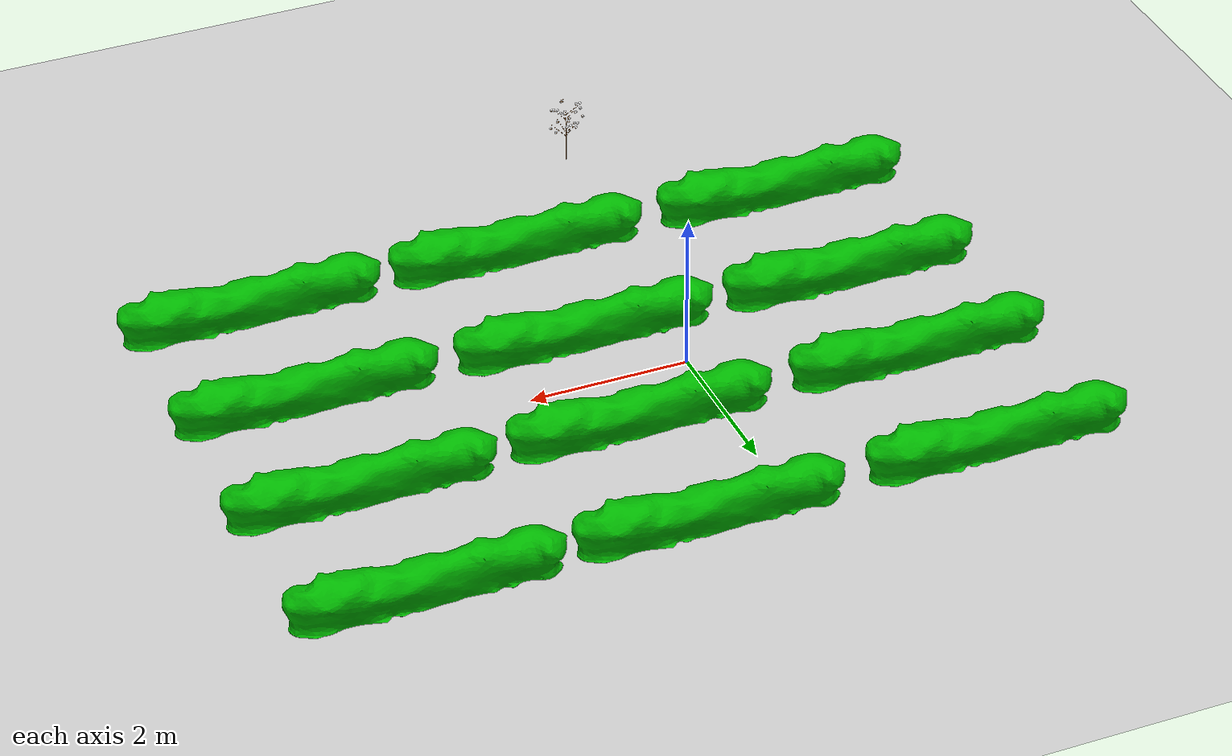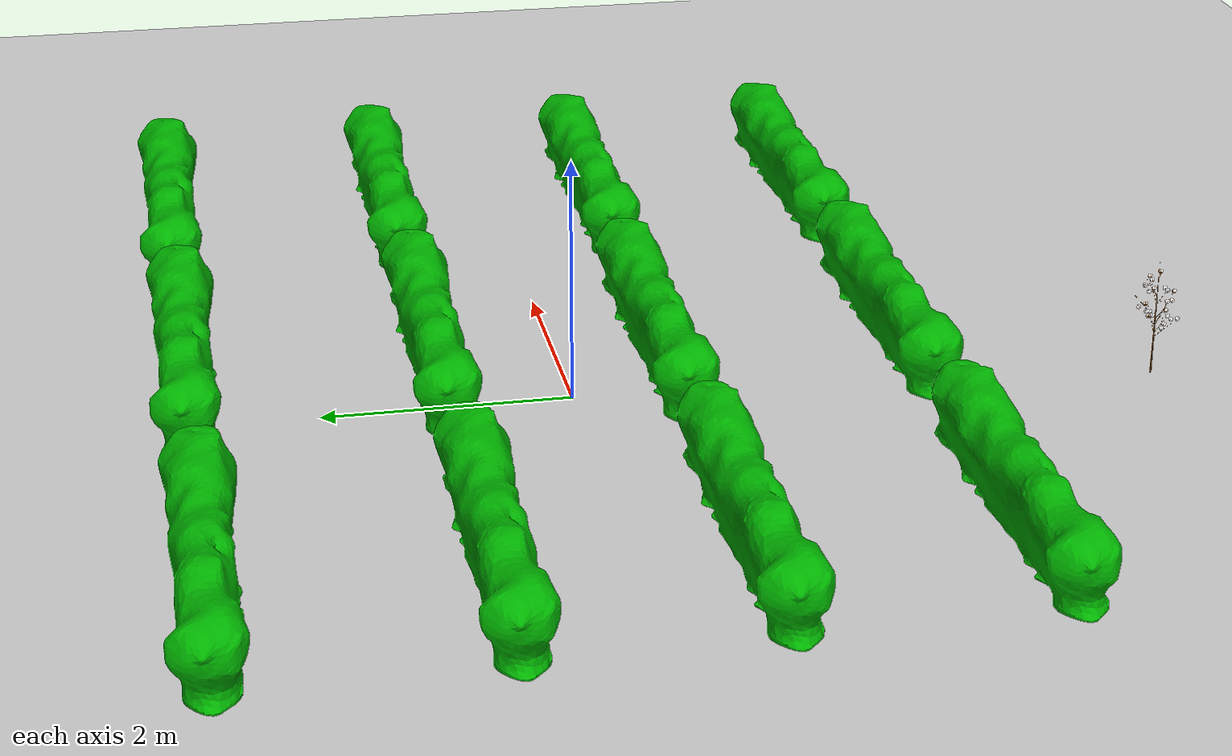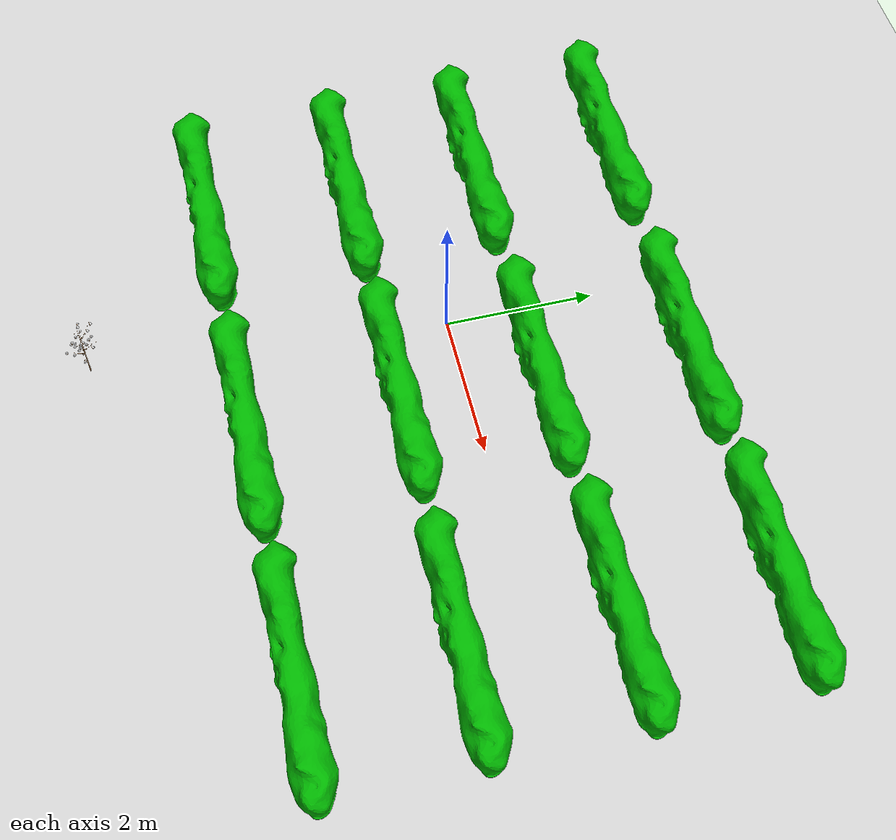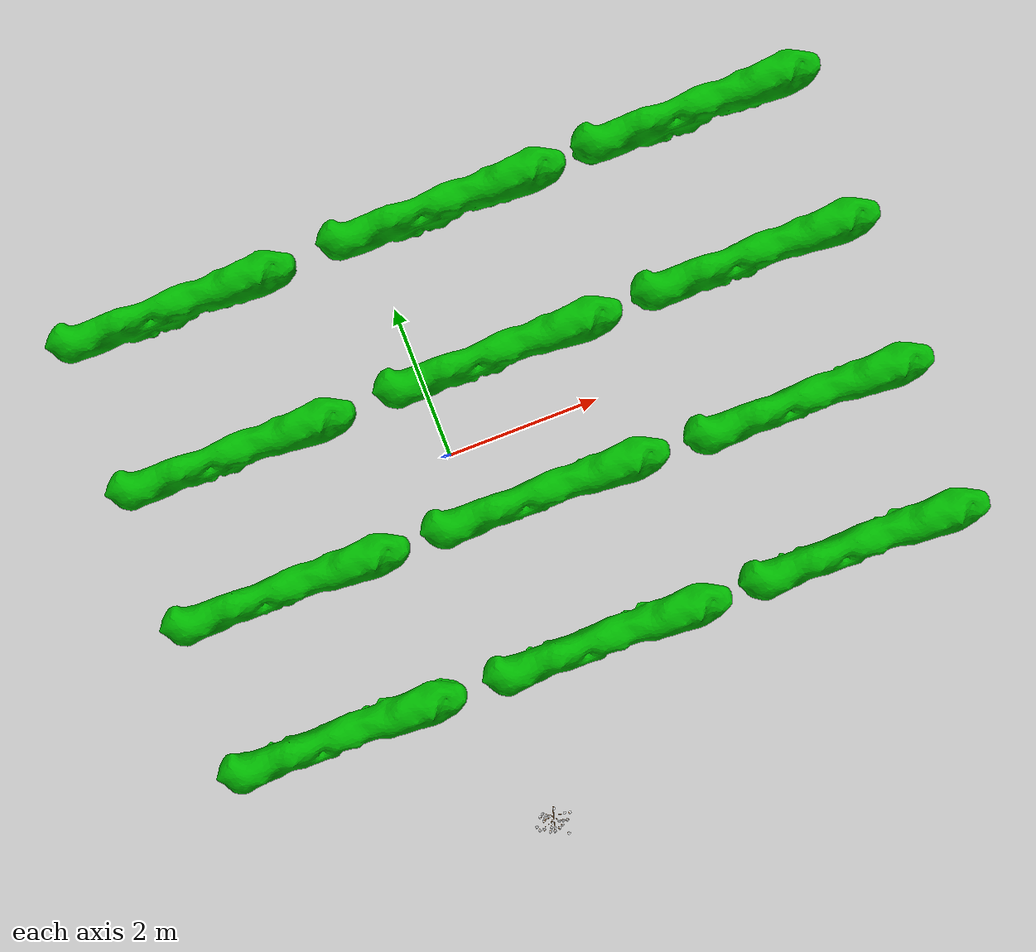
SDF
<sdf version="1.4">
 <world name="default">
  <light name="sun" type="directional">
   <pose>0 0 10 0 -0 0</pose>
   <diffuse>0.8 0.8 0.8 1</diffuse>
   <specular>0.2 0.2 0.2 1</specular>
   <attenuation>
    <range>1000</range>
    <constant>0.9</constant>
    <linear>0.01</linear>
    <quadratic>0.001</quadratic>
   </attenuation>
   <direction>-0.5 0.1 -0.9</direction>
  </light>
  <model name="earth_plane">
   <static>1</static>
   <link name="link">
    <collision name="collision">
     <geometry><plane><normal>0 0 1</normal><size>100 100</size></plane></geometry>
     <surface><friction><ode><mu>100</mu><mu2>50</mu2></ode></friction></surface>
    </collision>
    <visual name="visual">
     <cast_shadows>0</cast_shadows>
     <geometry><plane><normal>0 0 1</normal><size>100 100</size></plane></geometry>
     <material>
      <script>
       <uri>model://earth_plane/materials/scripts</uri>
       <uri>model://earth_plane/materials/textures</uri>
       <name>vrc/earth</name>
      </script>
     </material>
    </visual>
    <velocity_decay><linear>0</linear><angular>0</angular></velocity_decay>
   </link>
  </model>
  <model name="cotton">
   <link name="link">
    <collision name="collision">
     <geometry><mesh><scale>.4 .4 .4</scale><uri>model://cotton/meshes/cotton.dae</uri></mesh></geometry>
    </collision>
    <inertial>
     <mass>1</mass>
     <inertia>
      <ixx>0.166667</ixx>
      <ixy>0</ixy>
      <ixz>0</ixz>
      <iyy>0.166667</iyy>
      <iyz>0</iyz>
      <izz>0.166667</izz>
     </inertia>
    </inertial>
    <visual name="visual">
     <geometry><mesh><scale>.4 .4  .4</scale><uri>model://cotton/meshes/cotton.dae</uri></mesh></geometry>
    </visual>
    <velocity_decay><linear>0</linear><angular>0</angular></velocity_decay>
    <gravity>0</gravity>
   </link>
   <pose>1 -5 0 0 -0 0</pose>
   <static>1</static>
  </model>
  <physics type="ode">
   <max_step_size>0.001</max_step_size>
   <real_time_factor>1</real_time_factor>
   <real_time_update_rate>1000</real_time_update_rate>
   <gravity>0 0 -9.8</gravity>
  </physics>
  <scene>
   <ambient>0.4 0.4 0.4 1</ambient>
   <background>0.7 0.7 0.7 1</background>
   <shadows>1</shadows>
   <sky><clouds><speed>12</speed></clouds></sky>
  </scene>
  <spherical_coordinates>
   <surface_model>EARTH_WGS84</surface_model>
   <latitude_deg>0</latitude_deg>
   <longitude_deg>0</longitude_deg>
   <elevation>0</elevation>
   <heading_deg>0</heading_deg>
  </spherical_coordinates>
  <model name="Bush">
   <link name="link">
    <collision name="collision">
     <geometry><mesh><scale>1 1 1</scale><uri>model://plot/meshes/plot.stl</uri></mesh></geometry>
    </collision>
    <inertial>
     <mass>1</mass>
     <inertia>
      <ixx>0.166667</ixx>
      <ixy>0</ixy>
      <ixz>0</ixz>
      <iyy>0.166667</iyy>
      <iyz>0</iyz>
      <izz>0.166667</izz>
     </inertia>
    </inertial>
    <visual name="visual">
     <geometry><mesh><scale>1 1 1</scale><uri>model://plot/meshes/plot.stl</uri></mesh></geometry>
     <material>
      <script><uri>file://media/materials/scripts/gazebo.material</uri><name>Gazebo/Grey</name></script>
      <ambient>0.2 0.9 0.1 1</ambient>
      <diffuse>0 0.7 0 1</diffuse>
      <specular>0.01 0.01 0.01 1</specular>
      <emissive>0 0 0 1</emissive>
     </material>
    </visual>
    <velocity_decay><linear>0</linear><angular>0</angular></velocity_decay>
   </link>
   <pose>1.03945 -2.8643 0.306338 1.4e-05 -0 -0.003791</pose>
   <static>0</static>
  </model>
  <model name="Bush_0">
   <link name="link">
    <collision name="collision">
     <geometry><mesh><scale>1 1 1</scale><uri>model://plot/meshes/plot.stl</uri></mesh></geometry>
    </collision>
    <inertial>
     <mass>1</mass>
     <inertia>
      <ixx>0.166667</ixx>
      <ixy>0</ixy>
      <ixz>0</ixz>
      <iyy>0.166667</iyy>
      <iyz>0</iyz>
      <izz>0.166667</izz>
     </inertia>
    </inertial>
    <visual name="visual">
     <geometry><mesh><scale>1 1 1</scale><uri>model://plot/meshes/plot.stl</uri></mesh></geometry>
     <material>
      <script><uri>file://media/materials/scripts/gazebo.material</uri><name>Gazebo/Grey</name></script>
      <ambient>0.2 0.9 0.1 1</ambient>
      <diffuse>0 0.7 0 1</diffuse>
      <specular>0.01 0.01 0.01 1</specular>
      <emissive>0 0 0 1</emissive>
     </material>
    </visual>
    <velocity_decay><linear>0</linear><angular>0</angular></velocity_decay>
   </link>
   <pose>4.48662 -2.89369 0.306338 1.3e-05 -0 -0.003792</pose>
   <static>0</static>
  </model>
  <model name="Bush_1">
   <link name="link">
    <collision name="collision">
     <geometry><mesh><scale>1 1 1</scale><uri>model://plot/meshes/plot.stl</uri></mesh></geometry>
    </collision>
    <inertial>
     <mass>1</mass>
     <inertia>
      <ixx>0.166667</ixx>
      <ixy>0</ixy>
      <ixz>0</ixz>
      <iyy>0.166667</iyy>
      <iyz>0</iyz>
      <izz>0.166667</izz>
     </inertia>
    </inertial>
    <visual name="visual">
     <geometry><mesh><scale>1 1 1</scale><uri>model://plot/meshes/plot.stl</uri></mesh></geometry>
     <material>
      <script><uri>file://media/materials/scripts/gazebo.material</uri><name>Gazebo/Grey</name></script>
      <ambient>0.2 0.9 0.1 1</ambient>
      <diffuse>0 0.7 0 1</diffuse>
      <specular>0.01 0.01 0.01 1</specular>
      <emissive>0 0 0 1</emissive>
     </material>
    </visual>
    <velocity_decay><linear>0</linear><angular>0</angular></velocity_decay>
   </link>
   <pose>-2.50956 -2.82219 0.306333 8e-06 7e-06 -0.003797</pose>
   <static>0</static>
  </model>
  <model name="Bush_2">
   <link name="link">
    <collision name="collision">
     <geometry><mesh><scale>1 1 1</scale><uri>model://plot/meshes/plot.stl</uri></mesh></geometry>
    </collision>
    <inertial>
     <mass>1</mass>
     <inertia>
      <ixx>0.166667</ixx>
      <ixy>0</ixy>
      <ixz>0</ixz>
      <iyy>0.166667</iyy>
      <iyz>0</iyz>
      <izz>0.166667</izz>
     </inertia>
    </inertial>
    <visual name="visual">
     <geometry><mesh><scale>1 1 1</scale><uri>model://plot/meshes/plot.stl</uri></mesh></geometry>
     <material>
      <script><uri>file://media/materials/scripts/gazebo.material</uri><name>Gazebo/Grey</name></script>
      <ambient>0.2 0.9 0.1 1</ambient>
      <diffuse>0 0.7 0 1</diffuse>
      <specular>0.01 0.01 0.01 1</specular>
      <emissive>0 0 0 1</emissive>
     </material>
    </visual>
    <velocity_decay><linear>0</linear><angular>0</angular></velocity_decay>
   </link>
   <pose>-2.51708 -0.832566 0.30633 3e-06 -9e-06 -0.003814</pose>
   <static>0</static>
  </model>
  <model name="Bush_3">
   <link name="link">
    <collision name="collision">
     <geometry><mesh><scale>1 1 1</scale><uri>model://plot/meshes/plot.stl</uri></mesh></geometry>
    </collision>
    <inertial>
     <mass>1</mass>
     <inertia>
      <ixx>0.166667</ixx>
      <ixy>0</ixy>
      <ixz>0</ixz>
      <iyy>0.166667</iyy>
      <iyz>0</iyz>
      <izz>0.166667</izz>
     </inertia>
    </inertial>
    <visual name="visual">
     <geometry><mesh><scale>1 1 1</scale><uri>model://plot/meshes/plot.stl</uri></mesh></geometry>
     <material>
      <script><uri>file://media/materials/scripts/gazebo.material</uri><name>Gazebo/Grey</name></script>
      <ambient>0.2 0.9 0.1 1</ambient>
      <diffuse>0 0.7 0 1</diffuse>
      <specular>0.01 0.01 0.01 1</specular>
      <emissive>0 0 0 1</emissive>
     </material>
    </visual>
    <velocity_decay><linear>0</linear><angular>0</angular></velocity_decay>
   </link>
   <pose>0.967384 -0.860697 0.306328 6e-06 -1e-05 -0.003808</pose>
   <static>0</static>
  </model>
  <model name="Bush_4">
   <link name="link">
    <collision name="collision">
     <geometry><mesh><scale>1 1 1</scale><uri>model://plot/meshes/plot.stl</uri></mesh></geometry>
    </collision>
    <inertial>
     <mass>1</mass>
     <inertia>
      <ixx>0.166667</ixx>
      <ixy>0</ixy>
      <ixz>0</ixz>
      <iyy>0.166667</iyy>
      <iyz>0</iyz>
      <izz>0.166667</izz>
     </inertia>
    </inertial>
    <visual name="visual">
     <geometry><mesh><scale>1 1 1</scale><uri>model://plot/meshes/plot.stl</uri></mesh></geometry>
     <material>
      <script><uri>file://media/materials/scripts/gazebo.material</uri><name>Gazebo/Grey</name></script>
      <ambient>0.2 0.9 0.1 1</ambient>
      <diffuse>0 0.7 0 1</diffuse>
      <specular>0.01 0.01 0.01 1</specular>
      <emissive>0 0 0 1</emissive>
     </material>
    </visual>
    <velocity_decay><linear>0</linear><angular>0</angular></velocity_decay>
   </link>
   <pose>4.48616 -0.932429 0.30633 3e-06 -9e-06 -0.00381</pose>
   <static>0</static>
  </model>
  <model name="Bush_5">
   <link name="link">
    <collision name="collision">
     <geometry><mesh><scale>1 1 1</scale><uri>model://plot/meshes/plot.stl</uri></mesh></geometry>
    </collision>
    <inertial>
     <mass>1</mass>
     <inertia>
      <ixx>0.166667</ixx>
      <ixy>0</ixy>
      <ixz>0</ixz>
      <iyy>0.166667</iyy>
      <iyz>0</iyz>
      <izz>0.166667</izz>
     </inertia>
    </inertial>
    <visual name="visual">
     <geometry><mesh><scale>1 1 1</scale><uri>model://plot/meshes/plot.stl</uri></mesh></geometry>
     <material>
      <script><uri>file://media/materials/scripts/gazebo.material</uri><name>Gazebo/Grey</name></script>
      <ambient>0.2 0.9 0.1 1</ambient>
      <diffuse>0 0.7 0 1</diffuse>
      <specular>0.01 0.01 0.01 1</specular>
      <emissive>0 0 0 1</emissive>
     </material>
    </visual>
    <velocity_decay><linear>0</linear><angular>0</angular></velocity_decay>
   </link>
   <pose>-2.54869 1.00483 0.306338 1.1e-05 -1e-06 -0.003812</pose>
   <static>0</static>
  </model>
  <model name="Bush_6">
   <link name="link">
    <collision name="collision">
     <geometry><mesh><scale>1 1 1</scale><uri>model://plot/meshes/plot.stl</uri></mesh></geometry>
    </collision>
    <inertial>
     <mass>1</mass>
     <inertia>
      <ixx>0.166667</ixx>
      <ixy>0</ixy>
      <ixz>0</ixz>
      <iyy>0.166667</iyy>
      <iyz>0</iyz>
      <izz>0.166667</izz>
     </inertia>
    </inertial>
    <visual name="visual">
     <geometry><mesh><scale>1 1 1</scale><uri>model://plot/meshes/plot.stl</uri></mesh></geometry>
     <material>
      <script><uri>file://media/materials/scripts/gazebo.material</uri><name>Gazebo/Grey</name></script>
      <ambient>0.2 0.9 0.1 1</ambient>
      <diffuse>0 0.7 0 1</diffuse>
      <specular>0.01 0.01 0.01 1</specular>
      <emissive>0 0 0 1</emissive>
     </material>
    </visual>
    <velocity_decay><linear>0</linear><angular>0</angular></velocity_decay>
   </link>
   <pose>1.04286 1.00483 0.306338 1.1e-05 -1e-06 -0.003814</pose>
   <static>0</static>
  </model>
  <model name="Bush_7">
   <link name="link">
    <collision name="collision">
     <geometry><mesh><scale>1 1 1</scale><uri>model://plot/meshes/plot.stl</uri></mesh></geometry>
    </collision>
    <inertial>
     <mass>1</mass>
     <inertia>
      <ixx>0.166667</ixx>
      <ixy>0</ixy>
      <ixz>0</ixz>
      <iyy>0.166667</iyy>
      <iyz>0</iyz>
      <izz>0.166667</izz>
     </inertia>
    </inertial>
    <visual name="visual">
     <geometry><mesh><scale>1 1 1</scale><uri>model://plot/meshes/plot.stl</uri></mesh></geometry>
     <material>
      <script><uri>file://media/materials/scripts/gazebo.material</uri><name>Gazebo/Grey</name></script>
      <ambient>0.2 0.9 0.1 1</ambient>
      <diffuse>0 0.7 0 1</diffuse>
      <specular>0.01 0.01 0.01 1</specular>
      <emissive>0 0 0 1</emissive>
     </material>
    </visual>
    <velocity_decay><linear>0</linear><angular>0</angular></velocity_decay>
   </link>
   <pose>4.50535 1.00483 0.306338 1.1e-05 -1e-06 -0.003816</pose>
   <static>0</static>
  </model>
  <model name="Bush_8">
   <link name="link">
    <collision name="collision">
     <geometry><mesh><scale>1 1 1</scale><uri>model://plot/meshes/plot.stl</uri></mesh></geometry>
    </collision>
    <inertial>
     <mass>1</mass>
     <inertia>
      <ixx>0.166667</ixx>
      <ixy>0</ixy>
      <ixz>0</ixz>
      <iyy>0.166667</iyy>
      <iyz>0</iyz>
      <izz>0.166667</izz>
     </inertia>
    </inertial>
    <visual name="visual">
     <geometry><mesh><scale>1 1 1</scale><uri>model://plot/meshes/plot.stl</uri></mesh></geometry>
     <material>
      <script><uri>file://media/materials/scripts/gazebo.material</uri><name>Gazebo/Grey</name></script>
      <ambient>0.2 0.9 0.1 1</ambient>
      <diffuse>0 0.7 0 1</diffuse>
      <specular>0.01 0.01 0.01 1</specular>
      <emissive>0 0 0 1</emissive>
     </material>
    </visual>
    <velocity_decay><linear>0</linear><angular>0</angular></velocity_decay>
   </link>
   <pose>-2.5906 3.00341 0.306338 1.4e-05 6.61744e-24 -0.003818</pose>
   <static>0</static>
  </model>
  <model name="Bush_9">
   <link name="link">
    <collision name="collision">
     <geometry><mesh><scale>1 1 1</scale><uri>model://plot/meshes/plot.stl</uri></mesh></geometry>
    </collision>
    <inertial>
     <mass>1</mass>
     <inertia>
      <ixx>0.166667</ixx>
      <ixy>0</ixy>
      <ixz>0</ixz>
      <iyy>0.166667</iyy>
      <iyz>0</iyz>
      <izz>0.166667</izz>
     </inertia>
    </inertial>
    <visual name="visual">
     <geometry><mesh><scale>1 1 1</scale><uri>model://plot/meshes/plot.stl</uri></mesh></geometry>
     <material>
      <script><uri>file://media/materials/scripts/gazebo.material</uri><name>Gazebo/Grey</name></script>
      <ambient>0.2 0.9 0.1 1</ambient>
      <diffuse>0 0.7 0 1</diffuse>
      <specular>0.01 0.01 0.01 1</specular>
      <emissive>0 0 0 1</emissive>
     </material>
    </visual>
    <velocity_decay><linear>0</linear><angular>0</angular></velocity_decay>
   </link>
   <pose>1.0429 3.00483 0.306338 1.1e-05 -1e-06 -0.003821</pose>
   <static>0</static>
  </model>
  <model name="Bush_10">
   <link name="link">
    <collision name="collision">
     <geometry><mesh><scale>1 1 1</scale><uri>model://plot/meshes/plot.stl</uri></mesh></geometry>
    </collision>
    <inertial>
     <mass>1</mass>
     <inertia>
      <ixx>0.166667</ixx>
      <ixy>0</ixy>
      <ixz>0</ixz>
      <iyy>0.166667</iyy>
      <iyz>0</iyz>
      <izz>0.166667</izz>
     </inertia>
    </inertial>
    <visual name="visual">
     <geometry><mesh><scale>1 1 1</scale><uri>model://plot/meshes/plot.stl</uri></mesh></geometry>
     <material>
      <script><uri>file://media/materials/scripts/gazebo.material</uri><name>Gazebo/Grey</name></script>
      <ambient>0.2 0.9 0.1 1</ambient>
      <diffuse>0 0.7 0 1</diffuse>
      <specular>0.01 0.01 0.01 1</specular>
      <emissive>0 0 0 1</emissive>
     </material>
    </visual>
    <velocity_decay><linear>0</linear><angular>0</angular></velocity_decay>
   </link>
   <pose>4.46685 3.00483 0.306338 1.1e-05 -1e-06 -0.003823</pose>
   <static>0</static>
  </model>
 </world>
</sdf>
